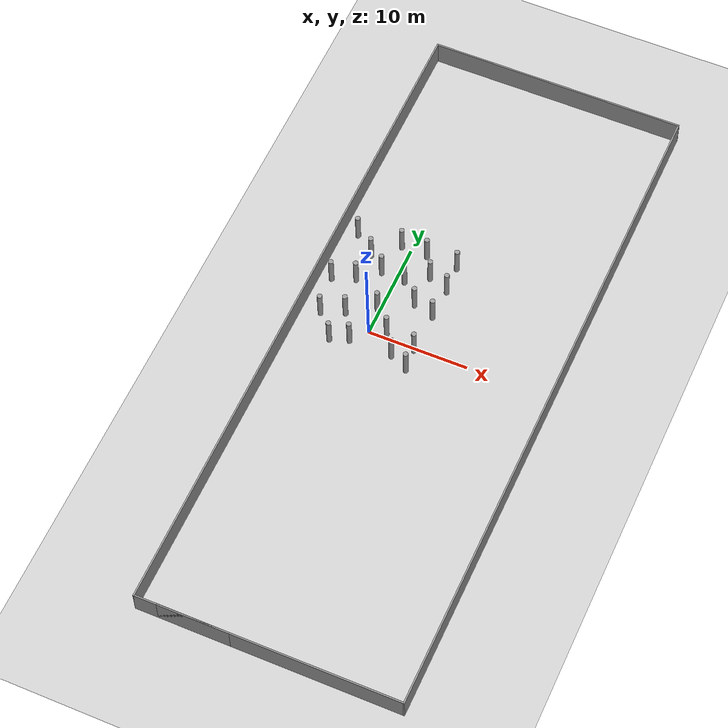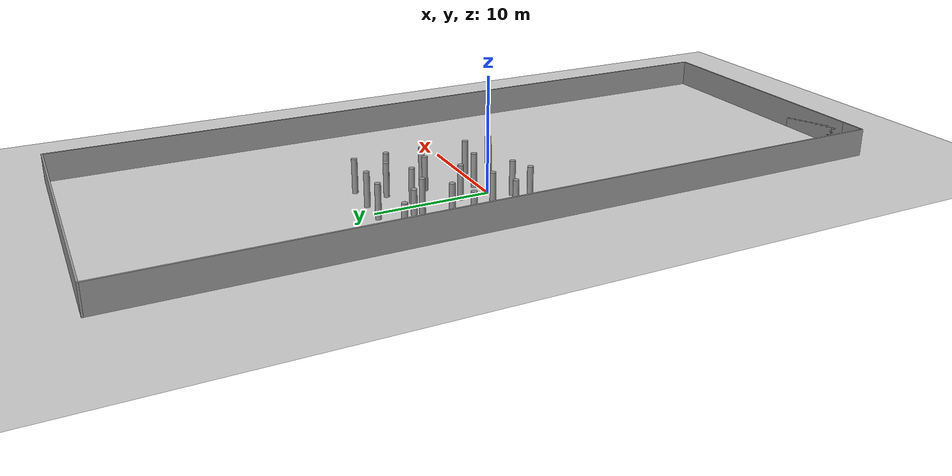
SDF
<sdf version="1.6">
 <world name="default">
  <model name="ground_plane">
   <static>1</static>
   <link name="link">
    <collision name="collision">
     <geometry><plane><normal>0 0 1</normal><size>100 100</size></plane></geometry>
     <surface><friction><ode><mu>100</mu><mu2>50</mu2></ode></friction></surface>
    </collision>
    <visual name="visual">
     <cast_shadows>0</cast_shadows>
     <geometry><plane><normal>0 0 1</normal><size>100 100</size></plane></geometry>
     <material>
      <script><uri>file://media/materials/scripts/gazebo.material</uri><name>Gazebo/Grey</name></script>
     </material>
    </visual>
   </link>
  </model>
  <model name="LjjForest">
   <link name="link_0">
    <inertial>
     <mass>1</mass>
     <inertia><ixx>0.145833</ixx><ixy>0</ixy><ixz>0</ixz><iyy>0.145833</iyy><iyz>0</iyz><izz>0.125</izz></inertia>
    </inertial>
    <pose>-5.02717 0.116957 0 0 -0 0</pose>
    <visual name="visual">
     <geometry><cylinder><radius>0.25</radius><length>3</length></cylinder></geometry>
     <material>
      <lighting>1</lighting>
      <script><uri>file://media/materials/scripts/gazebo.material</uri><name>Gazebo/Grey</name></script>
      <shader type="vertex"><normal_map>__default__</normal_map></shader>
      <ambient>0.3 0.3 0.3 1</ambient>
      <diffuse>0.7 0.7 0.7 1</diffuse>
      <specular>0.01 0.01 0.01 1</specular>
      <emissive>0 0 0 1</emissive>
     </material>
    </visual>
    <collision name="collision">
     <geometry><cylinder><radius>0.25</radius><length>3</length></cylinder></geometry>
     <surface>
      <friction>
       <ode><mu>1</mu><mu2>1</mu2><fdir1>0 0 0</fdir1><slip1>0</slip1><slip2>0</slip2></ode>
       <torsional>
        <coefficient>1</coefficient>
        <patch_radius>0</patch_radius>
        <surface_radius>0</surface_radius>
        <use_patch_radius>1</use_patch_radius>
        <ode><slip>0</slip></ode>
       </torsional>
      </friction>
      <bounce><restitution_coefficient>0</restitution_coefficient><threshold>1e+06</threshold></bounce>
      <contact>
       <collide_without_contact>0</collide_without_contact>
       <collide_without_contact_bitmask>1</collide_without_contact_bitmask>
       <collide_bitmask>1</collide_bitmask>
       <ode>
        <soft_cfm>0</soft_cfm>
        <soft_erp>0.2</soft_erp>
        <kp>1e+13</kp>
        <kd>1</kd>
        <max_vel>0.01</max_vel>
        <min_depth>0</min_depth>
       </ode>
       <bullet>
        <split_impulse>1</split_impulse>
        <split_impulse_penetration_threshold>-0.01</split_impulse_penetration_threshold>
        <soft_cfm>0</soft_cfm>
        <soft_erp>0.2</soft_erp>
        <kp>1e+13</kp>
        <kd>1</kd>
       </bullet>
      </contact>
     </surface>
    </collision>
   </link>
   <link name="link_0_clone">
    <inertial>
     <mass>1</mass>
     <inertia><ixx>0.145833</ixx><ixy>0</ixy><ixz>0</ixz><iyy>0.145833</iyy><iyz>0</iyz><izz>0.125</izz></inertia>
    </inertial>
    <pose>-2.83119 0.981911 0 0 -0 0</pose>
    <visual name="visual">
     <geometry><cylinder><radius>0.25</radius><length>3</length></cylinder></geometry>
     <material>
      <lighting>1</lighting>
      <script><uri>file://media/materials/scripts/gazebo.material</uri><name>Gazebo/Grey</name></script>
      <shader type="vertex"><normal_map>__default__</normal_map></shader>
      <ambient>0.3 0.3 0.3 1</ambient>
      <diffuse>0.7 0.7 0.7 1</diffuse>
      <specular>0.01 0.01 0.01 1</specular>
      <emissive>0 0 0 1</emissive>
     </material>
    </visual>
    <collision name="collision">
     <geometry><cylinder><radius>0.25</radius><length>3</length></cylinder></geometry>
     <surface>
      <friction>
       <ode><mu>1</mu><mu2>1</mu2><fdir1>0 0 0</fdir1><slip1>0</slip1><slip2>0</slip2></ode>
       <torsional>
        <coefficient>1</coefficient>
        <patch_radius>0</patch_radius>
        <surface_radius>0</surface_radius>
        <use_patch_radius>1</use_patch_radius>
        <ode><slip>0</slip></ode>
       </torsional>
      </friction>
      <bounce><restitution_coefficient>0</restitution_coefficient><threshold>1e+06</threshold></bounce>
      <contact>
       <collide_without_contact>0</collide_without_contact>
       <collide_without_contact_bitmask>1</collide_without_contact_bitmask>
       <collide_bitmask>1</collide_bitmask>
       <ode>
        <soft_cfm>0</soft_cfm>
        <soft_erp>0.2</soft_erp>
        <kp>1e+13</kp>
        <kd>1</kd>
        <max_vel>0.01</max_vel>
        <min_depth>0</min_depth>
       </ode>
       <bullet>
        <split_impulse>1</split_impulse>
        <split_impulse_penetration_threshold>-0.01</split_impulse_penetration_threshold>
        <soft_cfm>0</soft_cfm>
        <soft_erp>0.2</soft_erp>
        <kp>1e+13</kp>
        <kd>1</kd>
       </bullet>
      </contact>
     </surface>
    </collision>
   </link>
   <link name="link_0_clone_0">
    <inertial>
     <mass>1</mass>
     <inertia><ixx>0.145833</ixx><ixy>0</ixy><ixz>0</ixz><iyy>0.145833</iyy><iyz>0</iyz><izz>0.125</izz></inertia>
    </inertial>
    <pose>-0.25253 2.5682 0 0 -0 0</pose>
    <visual name="visual">
     <geometry><cylinder><radius>0.25</radius><length>3</length></cylinder></geometry>
     <material>
      <lighting>1</lighting>
      <script><uri>file://media/materials/scripts/gazebo.material</uri><name>Gazebo/Grey</name></script>
      <shader type="vertex"><normal_map>__default__</normal_map></shader>
      <ambient>0.3 0.3 0.3 1</ambient>
      <diffuse>0.7 0.7 0.7 1</diffuse>
      <specular>0.01 0.01 0.01 1</specular>
      <emissive>0 0 0 1</emissive>
     </material>
    </visual>
    <collision name="collision">
     <geometry><cylinder><radius>0.25</radius><length>3</length></cylinder></geometry>
     <surface>
      <friction>
       <ode><mu>1</mu><mu2>1</mu2><fdir1>0 0 0</fdir1><slip1>0</slip1><slip2>0</slip2></ode>
       <torsional>
        <coefficient>1</coefficient>
        <patch_radius>0</patch_radius>
        <surface_radius>0</surface_radius>
        <use_patch_radius>1</use_patch_radius>
        <ode><slip>0</slip></ode>
       </torsional>
      </friction>
      <bounce><restitution_coefficient>0</restitution_coefficient><threshold>1e+06</threshold></bounce>
      <contact>
       <collide_without_contact>0</collide_without_contact>
       <collide_without_contact_bitmask>1</collide_without_contact_bitmask>
       <collide_bitmask>1</collide_bitmask>
       <ode>
        <soft_cfm>0</soft_cfm>
        <soft_erp>0.2</soft_erp>
        <kp>1e+13</kp>
        <kd>1</kd>
        <max_vel>0.01</max_vel>
        <min_depth>0</min_depth>
       </ode>
       <bullet>
        <split_impulse>1</split_impulse>
        <split_impulse_penetration_threshold>-0.01</split_impulse_penetration_threshold>
        <soft_cfm>0</soft_cfm>
        <soft_erp>0.2</soft_erp>
        <kp>1e+13</kp>
        <kd>1</kd>
       </bullet>
      </contact>
     </surface>
    </collision>
   </link>
   <link name="link_0_clone_1">
    <inertial>
     <mass>1</mass>
     <inertia><ixx>0.145833</ixx><ixy>0</ixy><ixz>0</ixz><iyy>0.145833</iyy><iyz>0</iyz><izz>0.125</izz></inertia>
    </inertial>
    <pose>-1.2394 -1.64814 0 0 -0 0</pose>
    <visual name="visual">
     <geometry><cylinder><radius>0.25</radius><length>3</length></cylinder></geometry>
     <material>
      <lighting>1</lighting>
      <script><uri>file://media/materials/scripts/gazebo.material</uri><name>Gazebo/Grey</name></script>
      <shader type="vertex"><normal_map>__default__</normal_map></shader>
      <ambient>0.3 0.3 0.3 1</ambient>
      <diffuse>0.7 0.7 0.7 1</diffuse>
      <specular>0.01 0.01 0.01 1</specular>
      <emissive>0 0 0 1</emissive>
     </material>
    </visual>
    <collision name="collision">
     <geometry><cylinder><radius>0.25</radius><length>3</length></cylinder></geometry>
     <surface>
      <friction>
       <ode><mu>1</mu><mu2>1</mu2><fdir1>0 0 0</fdir1><slip1>0</slip1><slip2>0</slip2></ode>
       <torsional>
        <coefficient>1</coefficient>
        <patch_radius>0</patch_radius>
        <surface_radius>0</surface_radius>
        <use_patch_radius>1</use_patch_radius>
        <ode><slip>0</slip></ode>
       </torsional>
      </friction>
      <bounce><restitution_coefficient>0</restitution_coefficient><threshold>1e+06</threshold></bounce>
      <contact>
       <collide_without_contact>0</collide_without_contact>
       <collide_without_contact_bitmask>1</collide_without_contact_bitmask>
       <collide_bitmask>1</collide_bitmask>
       <ode>
        <soft_cfm>0</soft_cfm>
        <soft_erp>0.2</soft_erp>
        <kp>1e+13</kp>
        <kd>1</kd>
        <max_vel>0.01</max_vel>
        <min_depth>0</min_depth>
       </ode>
       <bullet>
        <split_impulse>1</split_impulse>
        <split_impulse_penetration_threshold>-0.01</split_impulse_penetration_threshold>
        <soft_cfm>0</soft_cfm>
        <soft_erp>0.2</soft_erp>
        <kp>1e+13</kp>
        <kd>1</kd>
       </bullet>
      </contact>
     </surface>
    </collision>
   </link>
   <link name="link_0_clone_15">
    <inertial>
     <mass>1</mass>
     <inertia><ixx>0.145833</ixx><ixy>0</ixy><ixz>0</ixz><iyy>0.145833</iyy><iyz>0</iyz><izz>0.125</izz></inertia>
    </inertial>
    <pose>-3.03254 -2.29236 0 0 -0 0</pose>
    <visual name="visual">
     <geometry><cylinder><radius>0.25</radius><length>3</length></cylinder></geometry>
     <material>
      <lighting>1</lighting>
      <script><uri>file://media/materials/scripts/gazebo.material</uri><name>Gazebo/Grey</name></script>
      <shader type="vertex"><normal_map>__default__</normal_map></shader>
      <ambient>0.3 0.3 0.3 1</ambient>
      <diffuse>0.7 0.7 0.7 1</diffuse>
      <specular>0.01 0.01 0.01 1</specular>
      <emissive>0 0 0 1</emissive>
     </material>
    </visual>
    <collision name="collision">
     <geometry><cylinder><radius>0.25</radius><length>3</length></cylinder></geometry>
     <surface>
      <friction>
       <ode><mu>1</mu><mu2>1</mu2><fdir1>0 0 0</fdir1><slip1>0</slip1><slip2>0</slip2></ode>
       <torsional>
        <coefficient>1</coefficient>
        <patch_radius>0</patch_radius>
        <surface_radius>0</surface_radius>
        <use_patch_radius>1</use_patch_radius>
        <ode><slip>0</slip></ode>
       </torsional>
      </friction>
      <bounce><restitution_coefficient>0</restitution_coefficient><threshold>1e+06</threshold></bounce>
      <contact>
       <collide_without_contact>0</collide_without_contact>
       <collide_without_contact_bitmask>1</collide_without_contact_bitmask>
       <collide_bitmask>1</collide_bitmask>
       <ode>
        <soft_cfm>0</soft_cfm>
        <soft_erp>0.2</soft_erp>
        <kp>1e+13</kp>
        <kd>1</kd>
        <max_vel>0.01</max_vel>
        <min_depth>0</min_depth>
       </ode>
       <bullet>
        <split_impulse>1</split_impulse>
        <split_impulse_penetration_threshold>-0.01</split_impulse_penetration_threshold>
        <soft_cfm>0</soft_cfm>
        <soft_erp>0.2</soft_erp>
        <kp>1e+13</kp>
        <kd>1</kd>
       </bullet>
      </contact>
     </surface>
    </collision>
   </link>
   <link name="link_0_clone_2">
    <inertial>
     <mass>1</mass>
     <inertia><ixx>0.145833</ixx><ixy>0</ixy><ixz>0</ixz><iyy>0.145833</iyy><iyz>0</iyz><izz>0.125</izz></inertia>
    </inertial>
    <pose>1.64727 0.418921 0 0 -0 0</pose>
    <visual name="visual">
     <geometry><cylinder><radius>0.25</radius><length>3</length></cylinder></geometry>
     <material>
      <lighting>1</lighting>
      <script><uri>file://media/materials/scripts/gazebo.material</uri><name>Gazebo/Grey</name></script>
      <shader type="vertex"><normal_map>__default__</normal_map></shader>
      <ambient>0.3 0.3 0.3 1</ambient>
      <diffuse>0.7 0.7 0.7 1</diffuse>
      <specular>0.01 0.01 0.01 1</specular>
      <emissive>0 0 0 1</emissive>
     </material>
    </visual>
    <collision name="collision">
     <geometry><cylinder><radius>0.25</radius><length>3</length></cylinder></geometry>
     <surface>
      <friction>
       <ode><mu>1</mu><mu2>1</mu2><fdir1>0 0 0</fdir1><slip1>0</slip1><slip2>0</slip2></ode>
       <torsional>
        <coefficient>1</coefficient>
        <patch_radius>0</patch_radius>
        <surface_radius>0</surface_radius>
        <use_patch_radius>1</use_patch_radius>
        <ode><slip>0</slip></ode>
       </torsional>
      </friction>
      <bounce><restitution_coefficient>0</restitution_coefficient><threshold>1e+06</threshold></bounce>
      <contact>
       <collide_without_contact>0</collide_without_contact>
       <collide_without_contact_bitmask>1</collide_without_contact_bitmask>
       <collide_bitmask>1</collide_bitmask>
       <ode>
        <soft_cfm>0</soft_cfm>
        <soft_erp>0.2</soft_erp>
        <kp>1e+13</kp>
        <kd>1</kd>
        <max_vel>0.01</max_vel>
        <min_depth>0</min_depth>
       </ode>
       <bullet>
        <split_impulse>1</split_impulse>
        <split_impulse_penetration_threshold>-0.01</split_impulse_penetration_threshold>
        <soft_cfm>0</soft_cfm>
        <soft_erp>0.2</soft_erp>
        <kp>1e+13</kp>
        <kd>1</kd>
       </bullet>
      </contact>
     </surface>
    </collision>
   </link>
   <link name="link_0_clone_23">
    <inertial>
     <mass>1</mass>
     <inertia><ixx>0.145833</ixx><ixy>0</ixy><ixz>0</ixz><iyy>0.145833</iyy><iyz>0</iyz><izz>0.125</izz></inertia>
    </inertial>
    <pose>-5.66615 4.05911 0 0 -0 0</pose>
    <visual name="visual">
     <geometry><cylinder><radius>0.25</radius><length>3</length></cylinder></geometry>
     <material>
      <lighting>1</lighting>
      <script><uri>file://media/materials/scripts/gazebo.material</uri><name>Gazebo/Grey</name></script>
      <shader type="vertex"><normal_map>__default__</normal_map></shader>
      <ambient>0.3 0.3 0.3 1</ambient>
      <diffuse>0.7 0.7 0.7 1</diffuse>
      <specular>0.01 0.01 0.01 1</specular>
      <emissive>0 0 0 1</emissive>
     </material>
    </visual>
    <collision name="collision">
     <geometry><cylinder><radius>0.25</radius><length>3</length></cylinder></geometry>
     <surface>
      <friction>
       <ode><mu>1</mu><mu2>1</mu2><fdir1>0 0 0</fdir1><slip1>0</slip1><slip2>0</slip2></ode>
       <torsional>
        <coefficient>1</coefficient>
        <patch_radius>0</patch_radius>
        <surface_radius>0</surface_radius>
        <use_patch_radius>1</use_patch_radius>
        <ode><slip>0</slip></ode>
       </torsional>
      </friction>
      <bounce><restitution_coefficient>0</restitution_coefficient><threshold>1e+06</threshold></bounce>
      <contact>
       <collide_without_contact>0</collide_without_contact>
       <collide_without_contact_bitmask>1</collide_without_contact_bitmask>
       <collide_bitmask>1</collide_bitmask>
       <ode>
        <soft_cfm>0</soft_cfm>
        <soft_erp>0.2</soft_erp>
        <kp>1e+13</kp>
        <kd>1</kd>
        <max_vel>0.01</max_vel>
        <min_depth>0</min_depth>
       </ode>
       <bullet>
        <split_impulse>1</split_impulse>
        <split_impulse_penetration_threshold>-0.01</split_impulse_penetration_threshold>
        <soft_cfm>0</soft_cfm>
        <soft_erp>0.2</soft_erp>
        <kp>1e+13</kp>
        <kd>1</kd>
       </bullet>
      </contact>
     </surface>
    </collision>
   </link>
   <link name="link_0_clone_24">
    <inertial>
     <mass>1</mass>
     <inertia><ixx>0.145833</ixx><ixy>0</ixy><ixz>0</ixz><iyy>0.145833</iyy><iyz>0</iyz><izz>0.125</izz></inertia>
    </inertial>
    <pose>2.92874 7.75131 0 0 -0 0</pose>
    <visual name="visual">
     <geometry><cylinder><radius>0.25</radius><length>3</length></cylinder></geometry>
     <material>
      <lighting>1</lighting>
      <script><uri>file://media/materials/scripts/gazebo.material</uri><name>Gazebo/Grey</name></script>
      <shader type="vertex"><normal_map>__default__</normal_map></shader>
      <ambient>0.3 0.3 0.3 1</ambient>
      <diffuse>0.7 0.7 0.7 1</diffuse>
      <specular>0.01 0.01 0.01 1</specular>
      <emissive>0 0 0 1</emissive>
     </material>
    </visual>
    <collision name="collision">
     <geometry><cylinder><radius>0.25</radius><length>3</length></cylinder></geometry>
     <surface>
      <friction>
       <ode><mu>1</mu><mu2>1</mu2><fdir1>0 0 0</fdir1><slip1>0</slip1><slip2>0</slip2></ode>
       <torsional>
        <coefficient>1</coefficient>
        <patch_radius>0</patch_radius>
        <surface_radius>0</surface_radius>
        <use_patch_radius>1</use_patch_radius>
        <ode><slip>0</slip></ode>
       </torsional>
      </friction>
      <bounce><restitution_coefficient>0</restitution_coefficient><threshold>1e+06</threshold></bounce>
      <contact>
       <collide_without_contact>0</collide_without_contact>
       <collide_without_contact_bitmask>1</collide_without_contact_bitmask>
       <collide_bitmask>1</collide_bitmask>
       <ode>
        <soft_cfm>0</soft_cfm>
        <soft_erp>0.2</soft_erp>
        <kp>1e+13</kp>
        <kd>1</kd>
        <max_vel>0.01</max_vel>
        <min_depth>0</min_depth>
       </ode>
       <bullet>
        <split_impulse>1</split_impulse>
        <split_impulse_penetration_threshold>-0.01</split_impulse_penetration_threshold>
        <soft_cfm>0</soft_cfm>
        <soft_erp>0.2</soft_erp>
        <kp>1e+13</kp>
        <kd>1</kd>
       </bullet>
      </contact>
     </surface>
    </collision>
   </link>
   <link name="link_0_clone_25">
    <inertial>
     <mass>1</mass>
     <inertia><ixx>0.145833</ixx><ixy>0</ixy><ixz>0</ixz><iyy>0.145833</iyy><iyz>0</iyz><izz>0.125</izz></inertia>
    </inertial>
    <pose>4.82479 9.76951 0 0 -0 0</pose>
    <visual name="visual">
     <geometry><cylinder><radius>0.25</radius><length>3</length></cylinder></geometry>
     <material>
      <lighting>1</lighting>
      <script><uri>file://media/materials/scripts/gazebo.material</uri><name>Gazebo/Grey</name></script>
      <shader type="vertex"><normal_map>__default__</normal_map></shader>
      <ambient>0.3 0.3 0.3 1</ambient>
      <diffuse>0.7 0.7 0.7 1</diffuse>
      <specular>0.01 0.01 0.01 1</specular>
      <emissive>0 0 0 1</emissive>
     </material>
    </visual>
    <collision name="collision">
     <geometry><cylinder><radius>0.25</radius><length>3</length></cylinder></geometry>
     <surface>
      <friction>
       <ode><mu>1</mu><mu2>1</mu2><fdir1>0 0 0</fdir1><slip1>0</slip1><slip2>0</slip2></ode>
       <torsional>
        <coefficient>1</coefficient>
        <patch_radius>0</patch_radius>
        <surface_radius>0</surface_radius>
        <use_patch_radius>1</use_patch_radius>
        <ode><slip>0</slip></ode>
       </torsional>
      </friction>
      <bounce><restitution_coefficient>0</restitution_coefficient><threshold>1e+06</threshold></bounce>
      <contact>
       <collide_without_contact>0</collide_without_contact>
       <collide_without_contact_bitmask>1</collide_without_contact_bitmask>
       <collide_bitmask>1</collide_bitmask>
       <ode>
        <soft_cfm>0</soft_cfm>
        <soft_erp>0.2</soft_erp>
        <kp>1e+13</kp>
        <kd>1</kd>
        <max_vel>0.01</max_vel>
        <min_depth>0</min_depth>
       </ode>
       <bullet>
        <split_impulse>1</split_impulse>
        <split_impulse_penetration_threshold>-0.01</split_impulse_penetration_threshold>
        <soft_cfm>0</soft_cfm>
        <soft_erp>0.2</soft_erp>
        <kp>1e+13</kp>
        <kd>1</kd>
       </bullet>
      </contact>
     </surface>
    </collision>
   </link>
   <link name="link_0_clone_26">
    <inertial>
     <mass>1</mass>
     <inertia><ixx>0.145833</ixx><ixy>0</ixy><ixz>0</ixz><iyy>0.145833</iyy><iyz>0</iyz><izz>0.125</izz></inertia>
    </inertial>
    <pose>1.66794 9.91533 0 0 -0 0</pose>
    <visual name="visual">
     <geometry><cylinder><radius>0.25</radius><length>3</length></cylinder></geometry>
     <material>
      <lighting>1</lighting>
      <script><uri>file://media/materials/scripts/gazebo.material</uri><name>Gazebo/Grey</name></script>
      <shader type="vertex"><normal_map>__default__</normal_map></shader>
      <ambient>0.3 0.3 0.3 1</ambient>
      <diffuse>0.7 0.7 0.7 1</diffuse>
      <specular>0.01 0.01 0.01 1</specular>
      <emissive>0 0 0 1</emissive>
     </material>
    </visual>
    <collision name="collision">
     <geometry><cylinder><radius>0.25</radius><length>3</length></cylinder></geometry>
     <surface>
      <friction>
       <ode><mu>1</mu><mu2>1</mu2><fdir1>0 0 0</fdir1><slip1>0</slip1><slip2>0</slip2></ode>
       <torsional>
        <coefficient>1</coefficient>
        <patch_radius>0</patch_radius>
        <surface_radius>0</surface_radius>
        <use_patch_radius>1</use_patch_radius>
        <ode><slip>0</slip></ode>
       </torsional>
      </friction>
      <bounce><restitution_coefficient>0</restitution_coefficient><threshold>1e+06</threshold></bounce>
      <contact>
       <collide_without_contact>0</collide_without_contact>
       <collide_without_contact_bitmask>1</collide_without_contact_bitmask>
       <collide_bitmask>1</collide_bitmask>
       <ode>
        <soft_cfm>0</soft_cfm>
        <soft_erp>0.2</soft_erp>
        <kp>1e+13</kp>
        <kd>1</kd>
        <max_vel>0.01</max_vel>
        <min_depth>0</min_depth>
       </ode>
       <bullet>
        <split_impulse>1</split_impulse>
        <split_impulse_penetration_threshold>-0.01</split_impulse_penetration_threshold>
        <soft_cfm>0</soft_cfm>
        <soft_erp>0.2</soft_erp>
        <kp>1e+13</kp>
        <kd>1</kd>
       </bullet>
      </contact>
     </surface>
    </collision>
   </link>
   <link name="link_0_clone_27">
    <inertial>
     <mass>1</mass>
     <inertia><ixx>0.145833</ixx><ixy>0</ixy><ixz>0</ixz><iyy>0.145833</iyy><iyz>0</iyz><izz>0.125</izz></inertia>
    </inertial>
    <pose>-0.975859 10.0087 0 0 -0 0</pose>
    <visual name="visual">
     <geometry><cylinder><radius>0.25</radius><length>3</length></cylinder></geometry>
     <material>
      <lighting>1</lighting>
      <script><uri>file://media/materials/scripts/gazebo.material</uri><name>Gazebo/Grey</name></script>
      <shader type="vertex"><normal_map>__default__</normal_map></shader>
      <ambient>0.3 0.3 0.3 1</ambient>
      <diffuse>0.7 0.7 0.7 1</diffuse>
      <specular>0.01 0.01 0.01 1</specular>
      <emissive>0 0 0 1</emissive>
     </material>
    </visual>
    <collision name="collision">
     <geometry><cylinder><radius>0.25</radius><length>3</length></cylinder></geometry>
     <surface>
      <friction>
       <ode><mu>1</mu><mu2>1</mu2><fdir1>0 0 0</fdir1><slip1>0</slip1><slip2>0</slip2></ode>
       <torsional>
        <coefficient>1</coefficient>
        <patch_radius>0</patch_radius>
        <surface_radius>0</surface_radius>
        <use_patch_radius>1</use_patch_radius>
        <ode><slip>0</slip></ode>
       </torsional>
      </friction>
      <bounce><restitution_coefficient>0</restitution_coefficient><threshold>1e+06</threshold></bounce>
      <contact>
       <collide_without_contact>0</collide_without_contact>
       <collide_without_contact_bitmask>1</collide_without_contact_bitmask>
       <collide_bitmask>1</collide_bitmask>
       <ode>
        <soft_cfm>0</soft_cfm>
        <soft_erp>0.2</soft_erp>
        <kp>1e+13</kp>
        <kd>1</kd>
        <max_vel>0.01</max_vel>
        <min_depth>0</min_depth>
       </ode>
       <bullet>
        <split_impulse>1</split_impulse>
        <split_impulse_penetration_threshold>-0.01</split_impulse_penetration_threshold>
        <soft_cfm>0</soft_cfm>
        <soft_erp>0.2</soft_erp>
        <kp>1e+13</kp>
        <kd>1</kd>
       </bullet>
      </contact>
     </surface>
    </collision>
   </link>
   <link name="link_0_clone_28">
    <inertial>
     <mass>1</mass>
     <inertia><ixx>0.145833</ixx><ixy>0</ixy><ixz>0</ixz><iyy>0.145833</iyy><iyz>0</iyz><izz>0.125</izz></inertia>
    </inertial>
    <pose>-3.28832 7.97521 0 0 -0 0</pose>
    <visual name="visual">
     <geometry><cylinder><radius>0.25</radius><length>3</length></cylinder></geometry>
     <material>
      <lighting>1</lighting>
      <script><uri>file://media/materials/scripts/gazebo.material</uri><name>Gazebo/Grey</name></script>
      <shader type="vertex"><normal_map>__default__</normal_map></shader>
      <ambient>0.3 0.3 0.3 1</ambient>
      <diffuse>0.7 0.7 0.7 1</diffuse>
      <specular>0.01 0.01 0.01 1</specular>
      <emissive>0 0 0 1</emissive>
     </material>
    </visual>
    <collision name="collision">
     <geometry><cylinder><radius>0.25</radius><length>3</length></cylinder></geometry>
     <surface>
      <friction>
       <ode><mu>1</mu><mu2>1</mu2><fdir1>0 0 0</fdir1><slip1>0</slip1><slip2>0</slip2></ode>
       <torsional>
        <coefficient>1</coefficient>
        <patch_radius>0</patch_radius>
        <surface_radius>0</surface_radius>
        <use_patch_radius>1</use_patch_radius>
        <ode><slip>0</slip></ode>
       </torsional>
      </friction>
      <bounce><restitution_coefficient>0</restitution_coefficient><threshold>1e+06</threshold></bounce>
      <contact>
       <collide_without_contact>0</collide_without_contact>
       <collide_without_contact_bitmask>1</collide_without_contact_bitmask>
       <collide_bitmask>1</collide_bitmask>
       <ode>
        <soft_cfm>0</soft_cfm>
        <soft_erp>0.2</soft_erp>
        <kp>1e+13</kp>
        <kd>1</kd>
        <max_vel>0.01</max_vel>
        <min_depth>0</min_depth>
       </ode>
       <bullet>
        <split_impulse>1</split_impulse>
        <split_impulse_penetration_threshold>-0.01</split_impulse_penetration_threshold>
        <soft_cfm>0</soft_cfm>
        <soft_erp>0.2</soft_erp>
        <kp>1e+13</kp>
        <kd>1</kd>
       </bullet>
      </contact>
     </surface>
    </collision>
   </link>
   <link name="link_0_clone_29">
    <inertial>
     <mass>1</mass>
     <inertia><ixx>0.145833</ixx><ixy>0</ixy><ixz>0</ixz><iyy>0.145833</iyy><iyz>0</iyz><izz>0.125</izz></inertia>
    </inertial>
    <pose>-5.38645 9.63545 0 0 -0 0</pose>
    <visual name="visual">
     <geometry><cylinder><radius>0.25</radius><length>3</length></cylinder></geometry>
     <material>
      <lighting>1</lighting>
      <script><uri>file://media/materials/scripts/gazebo.material</uri><name>Gazebo/Grey</name></script>
      <shader type="vertex"><normal_map>__default__</normal_map></shader>
      <ambient>0.3 0.3 0.3 1</ambient>
      <diffuse>0.7 0.7 0.7 1</diffuse>
      <specular>0.01 0.01 0.01 1</specular>
      <emissive>0 0 0 1</emissive>
     </material>
    </visual>
    <collision name="collision">
     <geometry><cylinder><radius>0.25</radius><length>3</length></cylinder></geometry>
     <surface>
      <friction>
       <ode><mu>1</mu><mu2>1</mu2><fdir1>0 0 0</fdir1><slip1>0</slip1><slip2>0</slip2></ode>
       <torsional>
        <coefficient>1</coefficient>
        <patch_radius>0</patch_radius>
        <surface_radius>0</surface_radius>
        <use_patch_radius>1</use_patch_radius>
        <ode><slip>0</slip></ode>
       </torsional>
      </friction>
      <bounce><restitution_coefficient>0</restitution_coefficient><threshold>1e+06</threshold></bounce>
      <contact>
       <collide_without_contact>0</collide_without_contact>
       <collide_without_contact_bitmask>1</collide_without_contact_bitmask>
       <collide_bitmask>1</collide_bitmask>
       <ode>
        <soft_cfm>0</soft_cfm>
        <soft_erp>0.2</soft_erp>
        <kp>1e+13</kp>
        <kd>1</kd>
        <max_vel>0.01</max_vel>
        <min_depth>0</min_depth>
       </ode>
       <bullet>
        <split_impulse>1</split_impulse>
        <split_impulse_penetration_threshold>-0.01</split_impulse_penetration_threshold>
        <soft_cfm>0</soft_cfm>
        <soft_erp>0.2</soft_erp>
        <kp>1e+13</kp>
        <kd>1</kd>
       </bullet>
      </contact>
     </surface>
    </collision>
   </link>
   <link name="link_0_clone_3">
    <inertial>
     <mass>1</mass>
     <inertia><ixx>0.145833</ixx><ixy>0</ixy><ixz>0</ixz><iyy>0.145833</iyy><iyz>0</iyz><izz>0.125</izz></inertia>
    </inertial>
    <pose>2.76214 4.38882 0 0 -0 0</pose>
    <visual name="visual">
     <geometry><cylinder><radius>0.25</radius><length>3</length></cylinder></geometry>
     <material>
      <lighting>1</lighting>
      <script><uri>file://media/materials/scripts/gazebo.material</uri><name>Gazebo/Grey</name></script>
      <shader type="vertex"><normal_map>__default__</normal_map></shader>
      <ambient>0.3 0.3 0.3 1</ambient>
      <diffuse>0.7 0.7 0.7 1</diffuse>
      <specular>0.01 0.01 0.01 1</specular>
      <emissive>0 0 0 1</emissive>
     </material>
    </visual>
    <collision name="collision">
     <geometry><cylinder><radius>0.25</radius><length>3</length></cylinder></geometry>
     <surface>
      <friction>
       <ode><mu>1</mu><mu2>1</mu2><fdir1>0 0 0</fdir1><slip1>0</slip1><slip2>0</slip2></ode>
       <torsional>
        <coefficient>1</coefficient>
        <patch_radius>0</patch_radius>
        <surface_radius>0</surface_radius>
        <use_patch_radius>1</use_patch_radius>
        <ode><slip>0</slip></ode>
       </torsional>
      </friction>
      <bounce><restitution_coefficient>0</restitution_coefficient><threshold>1e+06</threshold></bounce>
      <contact>
       <collide_without_contact>0</collide_without_contact>
       <collide_without_contact_bitmask>1</collide_without_contact_bitmask>
       <collide_bitmask>1</collide_bitmask>
       <ode>
        <soft_cfm>0</soft_cfm>
        <soft_erp>0.2</soft_erp>
        <kp>1e+13</kp>
        <kd>1</kd>
        <max_vel>0.01</max_vel>
        <min_depth>0</min_depth>
       </ode>
       <bullet>
        <split_impulse>1</split_impulse>
        <split_impulse_penetration_threshold>-0.01</split_impulse_penetration_threshold>
        <soft_cfm>0</soft_cfm>
        <soft_erp>0.2</soft_erp>
        <kp>1e+13</kp>
        <kd>1</kd>
       </bullet>
      </contact>
     </surface>
    </collision>
   </link>
   <link name="link_0_clone_30">
    <inertial>
     <mass>1</mass>
     <inertia><ixx>0.145833</ixx><ixy>0</ixy><ixz>0</ixz><iyy>0.145833</iyy><iyz>0</iyz><izz>0.125</izz></inertia>
    </inertial>
    <pose>4.96935 6.93626 0 0 -0 0</pose>
    <visual name="visual">
     <geometry><cylinder><radius>0.25</radius><length>3</length></cylinder></geometry>
     <material>
      <lighting>1</lighting>
      <script><uri>file://media/materials/scripts/gazebo.material</uri><name>Gazebo/Grey</name></script>
      <shader type="vertex"><normal_map>__default__</normal_map></shader>
      <ambient>0.3 0.3 0.3 1</ambient>
      <diffuse>0.7 0.7 0.7 1</diffuse>
      <specular>0.01 0.01 0.01 1</specular>
      <emissive>0 0 0 1</emissive>
     </material>
    </visual>
    <collision name="collision">
     <geometry><cylinder><radius>0.25</radius><length>3</length></cylinder></geometry>
     <surface>
      <friction>
       <ode><mu>1</mu><mu2>1</mu2><fdir1>0 0 0</fdir1><slip1>0</slip1><slip2>0</slip2></ode>
       <torsional>
        <coefficient>1</coefficient>
        <patch_radius>0</patch_radius>
        <surface_radius>0</surface_radius>
        <use_patch_radius>1</use_patch_radius>
        <ode><slip>0</slip></ode>
       </torsional>
      </friction>
      <bounce><restitution_coefficient>0</restitution_coefficient><threshold>1e+06</threshold></bounce>
      <contact>
       <collide_without_contact>0</collide_without_contact>
       <collide_without_contact_bitmask>1</collide_without_contact_bitmask>
       <collide_bitmask>1</collide_bitmask>
       <ode>
        <soft_cfm>0</soft_cfm>
        <soft_erp>0.2</soft_erp>
        <kp>1e+13</kp>
        <kd>1</kd>
        <max_vel>0.01</max_vel>
        <min_depth>0</min_depth>
       </ode>
       <bullet>
        <split_impulse>1</split_impulse>
        <split_impulse_penetration_threshold>-0.01</split_impulse_penetration_threshold>
        <soft_cfm>0</soft_cfm>
        <soft_erp>0.2</soft_erp>
        <kp>1e+13</kp>
        <kd>1</kd>
       </bullet>
      </contact>
     </surface>
    </collision>
   </link>
   <link name="link_0_clone_31">
    <inertial>
     <mass>1</mass>
     <inertia><ixx>0.145833</ixx><ixy>0</ixy><ixz>0</ixz><iyy>0.145833</iyy><iyz>0</iyz><izz>0.125</izz></inertia>
    </inertial>
    <pose>4.87388 3.77106 0 0 -0 0</pose>
    <visual name="visual">
     <geometry><cylinder><radius>0.25</radius><length>3</length></cylinder></geometry>
     <material>
      <lighting>1</lighting>
      <script><uri>file://media/materials/scripts/gazebo.material</uri><name>Gazebo/Grey</name></script>
      <shader type="vertex"><normal_map>__default__</normal_map></shader>
      <ambient>0.3 0.3 0.3 1</ambient>
      <diffuse>0.7 0.7 0.7 1</diffuse>
      <specular>0.01 0.01 0.01 1</specular>
      <emissive>0 0 0 1</emissive>
     </material>
    </visual>
    <collision name="collision">
     <geometry><cylinder><radius>0.25</radius><length>3</length></cylinder></geometry>
     <surface>
      <friction>
       <ode><mu>1</mu><mu2>1</mu2><fdir1>0 0 0</fdir1><slip1>0</slip1><slip2>0</slip2></ode>
       <torsional>
        <coefficient>1</coefficient>
        <patch_radius>0</patch_radius>
        <surface_radius>0</surface_radius>
        <use_patch_radius>1</use_patch_radius>
        <ode><slip>0</slip></ode>
       </torsional>
      </friction>
      <bounce><restitution_coefficient>0</restitution_coefficient><threshold>1e+06</threshold></bounce>
      <contact>
       <collide_without_contact>0</collide_without_contact>
       <collide_without_contact_bitmask>1</collide_without_contact_bitmask>
       <collide_bitmask>1</collide_bitmask>
       <ode>
        <soft_cfm>0</soft_cfm>
        <soft_erp>0.2</soft_erp>
        <kp>1e+13</kp>
        <kd>1</kd>
        <max_vel>0.01</max_vel>
        <min_depth>0</min_depth>
       </ode>
       <bullet>
        <split_impulse>1</split_impulse>
        <split_impulse_penetration_threshold>-0.01</split_impulse_penetration_threshold>
        <soft_cfm>0</soft_cfm>
        <soft_erp>0.2</soft_erp>
        <kp>1e+13</kp>
        <kd>1</kd>
       </bullet>
      </contact>
     </surface>
    </collision>
   </link>
   <link name="link_0_clone_32">
    <inertial>
     <mass>1</mass>
     <inertia><ixx>0.145833</ixx><ixy>0</ixy><ixz>0</ixz><iyy>0.145833</iyy><iyz>0</iyz><izz>0.125</izz></inertia>
    </inertial>
    <pose>3.04344 -1.68403 0 0 -0 0</pose>
    <visual name="visual">
     <geometry><cylinder><radius>0.25</radius><length>3</length></cylinder></geometry>
     <material>
      <lighting>1</lighting>
      <script><uri>file://media/materials/scripts/gazebo.material</uri><name>Gazebo/Grey</name></script>
      <shader type="vertex"><normal_map>__default__</normal_map></shader>
      <ambient>0.3 0.3 0.3 1</ambient>
      <diffuse>0.7 0.7 0.7 1</diffuse>
      <specular>0.01 0.01 0.01 1</specular>
      <emissive>0 0 0 1</emissive>
     </material>
    </visual>
    <collision name="collision">
     <geometry><cylinder><radius>0.25</radius><length>3</length></cylinder></geometry>
     <surface>
      <friction>
       <ode><mu>1</mu><mu2>1</mu2><fdir1>0 0 0</fdir1><slip1>0</slip1><slip2>0</slip2></ode>
       <torsional>
        <coefficient>1</coefficient>
        <patch_radius>0</patch_radius>
        <surface_radius>0</surface_radius>
        <use_patch_radius>1</use_patch_radius>
        <ode><slip>0</slip></ode>
       </torsional>
      </friction>
      <bounce><restitution_coefficient>0</restitution_coefficient><threshold>1e+06</threshold></bounce>
      <contact>
       <collide_without_contact>0</collide_without_contact>
       <collide_without_contact_bitmask>1</collide_without_contact_bitmask>
       <collide_bitmask>1</collide_bitmask>
       <ode>
        <soft_cfm>0</soft_cfm>
        <soft_erp>0.2</soft_erp>
        <kp>1e+13</kp>
        <kd>1</kd>
        <max_vel>0.01</max_vel>
        <min_depth>0</min_depth>
       </ode>
       <bullet>
        <split_impulse>1</split_impulse>
        <split_impulse_penetration_threshold>-0.01</split_impulse_penetration_threshold>
        <soft_cfm>0</soft_cfm>
        <soft_erp>0.2</soft_erp>
        <kp>1e+13</kp>
        <kd>1</kd>
       </bullet>
      </contact>
     </surface>
    </collision>
   </link>
   <link name="link_0_clone_4">
    <inertial>
     <mass>1</mass>
     <inertia><ixx>0.145833</ixx><ixy>0</ixy><ixz>0</ixz><iyy>0.145833</iyy><iyz>0</iyz><izz>0.125</izz></inertia>
    </inertial>
    <pose>0.858928 6.3824 0 0 -0 0</pose>
    <visual name="visual">
     <geometry><cylinder><radius>0.25</radius><length>3</length></cylinder></geometry>
     <material>
      <lighting>1</lighting>
      <script><uri>file://media/materials/scripts/gazebo.material</uri><name>Gazebo/Grey</name></script>
      <shader type="vertex"><normal_map>__default__</normal_map></shader>
      <ambient>0.3 0.3 0.3 1</ambient>
      <diffuse>0.7 0.7 0.7 1</diffuse>
      <specular>0.01 0.01 0.01 1</specular>
      <emissive>0 0 0 1</emissive>
     </material>
    </visual>
    <collision name="collision">
     <geometry><cylinder><radius>0.25</radius><length>3</length></cylinder></geometry>
     <surface>
      <friction>
       <ode><mu>1</mu><mu2>1</mu2><fdir1>0 0 0</fdir1><slip1>0</slip1><slip2>0</slip2></ode>
       <torsional>
        <coefficient>1</coefficient>
        <patch_radius>0</patch_radius>
        <surface_radius>0</surface_radius>
        <use_patch_radius>1</use_patch_radius>
        <ode><slip>0</slip></ode>
       </torsional>
      </friction>
      <bounce><restitution_coefficient>0</restitution_coefficient><threshold>1e+06</threshold></bounce>
      <contact>
       <collide_without_contact>0</collide_without_contact>
       <collide_without_contact_bitmask>1</collide_without_contact_bitmask>
       <collide_bitmask>1</collide_bitmask>
       <ode>
        <soft_cfm>0</soft_cfm>
        <soft_erp>0.2</soft_erp>
        <kp>1e+13</kp>
        <kd>1</kd>
        <max_vel>0.01</max_vel>
        <min_depth>0</min_depth>
       </ode>
       <bullet>
        <split_impulse>1</split_impulse>
        <split_impulse_penetration_threshold>-0.01</split_impulse_penetration_threshold>
        <soft_cfm>0</soft_cfm>
        <soft_erp>0.2</soft_erp>
        <kp>1e+13</kp>
        <kd>1</kd>
       </bullet>
      </contact>
     </surface>
    </collision>
   </link>
   <link name="link_0_clone_5">
    <inertial>
     <mass>1</mass>
     <inertia><ixx>0.145833</ixx><ixy>0</ixy><ixz>0</ixz><iyy>0.145833</iyy><iyz>0</iyz><izz>0.125</izz></inertia>
    </inertial>
    <pose>-1.56065 6.53618 0 0 -0 0</pose>
    <visual name="visual">
     <geometry><cylinder><radius>0.25</radius><length>3</length></cylinder></geometry>
     <material>
      <lighting>1</lighting>
      <script><uri>file://media/materials/scripts/gazebo.material</uri><name>Gazebo/Grey</name></script>
      <shader type="vertex"><normal_map>__default__</normal_map></shader>
      <ambient>0.3 0.3 0.3 1</ambient>
      <diffuse>0.7 0.7 0.7 1</diffuse>
      <specular>0.01 0.01 0.01 1</specular>
      <emissive>0 0 0 1</emissive>
     </material>
    </visual>
    <collision name="collision">
     <geometry><cylinder><radius>0.25</radius><length>3</length></cylinder></geometry>
     <surface>
      <friction>
       <ode><mu>1</mu><mu2>1</mu2><fdir1>0 0 0</fdir1><slip1>0</slip1><slip2>0</slip2></ode>
       <torsional>
        <coefficient>1</coefficient>
        <patch_radius>0</patch_radius>
        <surface_radius>0</surface_radius>
        <use_patch_radius>1</use_patch_radius>
        <ode><slip>0</slip></ode>
       </torsional>
      </friction>
      <bounce><restitution_coefficient>0</restitution_coefficient><threshold>1e+06</threshold></bounce>
      <contact>
       <collide_without_contact>0</collide_without_contact>
       <collide_without_contact_bitmask>1</collide_without_contact_bitmask>
       <collide_bitmask>1</collide_bitmask>
       <ode>
        <soft_cfm>0</soft_cfm>
        <soft_erp>0.2</soft_erp>
        <kp>1e+13</kp>
        <kd>1</kd>
        <max_vel>0.01</max_vel>
        <min_depth>0</min_depth>
       </ode>
       <bullet>
        <split_impulse>1</split_impulse>
        <split_impulse_penetration_threshold>-0.01</split_impulse_penetration_threshold>
        <soft_cfm>0</soft_cfm>
        <soft_erp>0.2</soft_erp>
        <kp>1e+13</kp>
        <kd>1</kd>
       </bullet>
      </contact>
     </surface>
    </collision>
   </link>
   <link name="link_0_clone_6">
    <inertial>
     <mass>1</mass>
     <inertia><ixx>0.145833</ixx><ixy>0</ixy><ixz>0</ixz><iyy>0.145833</iyy><iyz>0</iyz><izz>0.125</izz></inertia>
    </inertial>
    <pose>-3.46215 4.85006 0 0 -0 0</pose>
    <visual name="visual">
     <geometry><cylinder><radius>0.25</radius><length>3</length></cylinder></geometry>
     <material>
      <lighting>1</lighting>
      <script><uri>file://media/materials/scripts/gazebo.material</uri><name>Gazebo/Grey</name></script>
      <shader type="vertex"><normal_map>__default__</normal_map></shader>
      <ambient>0.3 0.3 0.3 1</ambient>
      <diffuse>0.7 0.7 0.7 1</diffuse>
      <specular>0.01 0.01 0.01 1</specular>
      <emissive>0 0 0 1</emissive>
     </material>
    </visual>
    <collision name="collision">
     <geometry><cylinder><radius>0.25</radius><length>3</length></cylinder></geometry>
     <surface>
      <friction>
       <ode><mu>1</mu><mu2>1</mu2><fdir1>0 0 0</fdir1><slip1>0</slip1><slip2>0</slip2></ode>
       <torsional>
        <coefficient>1</coefficient>
        <patch_radius>0</patch_radius>
        <surface_radius>0</surface_radius>
        <use_patch_radius>1</use_patch_radius>
        <ode><slip>0</slip></ode>
       </torsional>
      </friction>
      <bounce><restitution_coefficient>0</restitution_coefficient><threshold>1e+06</threshold></bounce>
      <contact>
       <collide_without_contact>0</collide_without_contact>
       <collide_without_contact_bitmask>1</collide_without_contact_bitmask>
       <collide_bitmask>1</collide_bitmask>
       <ode>
        <soft_cfm>0</soft_cfm>
        <soft_erp>0.2</soft_erp>
        <kp>1e+13</kp>
        <kd>1</kd>
        <max_vel>0.01</max_vel>
        <min_depth>0</min_depth>
       </ode>
       <bullet>
        <split_impulse>1</split_impulse>
        <split_impulse_penetration_threshold>-0.01</split_impulse_penetration_threshold>
        <soft_cfm>0</soft_cfm>
        <soft_erp>0.2</soft_erp>
        <kp>1e+13</kp>
        <kd>1</kd>
       </bullet>
      </contact>
     </surface>
    </collision>
   </link>
   <link name="link_0_clone_8">
    <inertial>
     <mass>1</mass>
     <inertia><ixx>0.145833</ixx><ixy>0</ixy><ixz>0</ixz><iyy>0.145833</iyy><iyz>0</iyz><izz>0.125</izz></inertia>
    </inertial>
    <pose>4.72743 -0.273206 0 0 -0 0</pose>
    <visual name="visual">
     <geometry><cylinder><radius>0.25</radius><length>3</length></cylinder></geometry>
     <material>
      <lighting>1</lighting>
      <script><uri>file://media/materials/scripts/gazebo.material</uri><name>Gazebo/Grey</name></script>
      <shader type="vertex"><normal_map>__default__</normal_map></shader>
      <ambient>0.3 0.3 0.3 1</ambient>
      <diffuse>0.7 0.7 0.7 1</diffuse>
      <specular>0.01 0.01 0.01 1</specular>
      <emissive>0 0 0 1</emissive>
     </material>
    </visual>
    <collision name="collision">
     <geometry><cylinder><radius>0.25</radius><length>3</length></cylinder></geometry>
     <surface>
      <friction>
       <ode><mu>1</mu><mu2>1</mu2><fdir1>0 0 0</fdir1><slip1>0</slip1><slip2>0</slip2></ode>
       <torsional>
        <coefficient>1</coefficient>
        <patch_radius>0</patch_radius>
        <surface_radius>0</surface_radius>
        <use_patch_radius>1</use_patch_radius>
        <ode><slip>0</slip></ode>
       </torsional>
      </friction>
      <bounce><restitution_coefficient>0</restitution_coefficient><threshold>1e+06</threshold></bounce>
      <contact>
       <collide_without_contact>0</collide_without_contact>
       <collide_without_contact_bitmask>1</collide_without_contact_bitmask>
       <collide_bitmask>1</collide_bitmask>
       <ode>
        <soft_cfm>0</soft_cfm>
        <soft_erp>0.2</soft_erp>
        <kp>1e+13</kp>
        <kd>1</kd>
        <max_vel>0.01</max_vel>
        <min_depth>0</min_depth>
       </ode>
       <bullet>
        <split_impulse>1</split_impulse>
        <split_impulse_penetration_threshold>-0.01</split_impulse_penetration_threshold>
        <soft_cfm>0</soft_cfm>
        <soft_erp>0.2</soft_erp>
        <kp>1e+13</kp>
        <kd>1</kd>
       </bullet>
      </contact>
     </surface>
    </collision>
   </link>
   <link name="link_0_clone_9">
    <inertial>
     <mass>1</mass>
     <inertia><ixx>0.145833</ixx><ixy>0</ixy><ixz>0</ixz><iyy>0.145833</iyy><iyz>0</iyz><izz>0.125</izz></inertia>
    </inertial>
    <pose>4.89769 -2.58143 0 0 -0 0</pose>
    <visual name="visual">
     <geometry><cylinder><radius>0.25</radius><length>3</length></cylinder></geometry>
     <material>
      <lighting>1</lighting>
      <script><uri>file://media/materials/scripts/gazebo.material</uri><name>Gazebo/Grey</name></script>
      <shader type="vertex"><normal_map>__default__</normal_map></shader>
      <ambient>0.3 0.3 0.3 1</ambient>
      <diffuse>0.7 0.7 0.7 1</diffuse>
      <specular>0.01 0.01 0.01 1</specular>
      <emissive>0 0 0 1</emissive>
     </material>
    </visual>
    <collision name="collision">
     <geometry><cylinder><radius>0.25</radius><length>3</length></cylinder></geometry>
     <surface>
      <friction>
       <ode><mu>1</mu><mu2>1</mu2><fdir1>0 0 0</fdir1><slip1>0</slip1><slip2>0</slip2></ode>
       <torsional>
        <coefficient>1</coefficient>
        <patch_radius>0</patch_radius>
        <surface_radius>0</surface_radius>
        <use_patch_radius>1</use_patch_radius>
        <ode><slip>0</slip></ode>
       </torsional>
      </friction>
      <bounce><restitution_coefficient>0</restitution_coefficient><threshold>1e+06</threshold></bounce>
      <contact>
       <collide_without_contact>0</collide_without_contact>
       <collide_without_contact_bitmask>1</collide_without_contact_bitmask>
       <collide_bitmask>1</collide_bitmask>
       <ode>
        <soft_cfm>0</soft_cfm>
        <soft_erp>0.2</soft_erp>
        <kp>1e+13</kp>
        <kd>1</kd>
        <max_vel>0.01</max_vel>
        <min_depth>0</min_depth>
       </ode>
       <bullet>
        <split_impulse>1</split_impulse>
        <split_impulse_penetration_threshold>-0.01</split_impulse_penetration_threshold>
        <soft_cfm>0</soft_cfm>
        <soft_erp>0.2</soft_erp>
        <kp>1e+13</kp>
        <kd>1</kd>
       </bullet>
      </contact>
     </surface>
    </collision>
   </link>
   <static>0</static>
   <pose>0.017646 0.017628 1.49999 0 -0 0.002046</pose>
  </model>
  <model name="PapertestForestWall">
   <pose>5.87002 -0.887253 0 0 -0 0</pose>
   <link name="Wall_10">
    <collision name="Wall_10_Collision">
     <geometry><box><size>67 0.15 2.5</size></box></geometry>
     <pose>0 0 1.25 0 -0 0</pose>
    </collision>
    <visual name="Wall_10_Visual">
     <pose>0 0 1.25 0 -0 0</pose>
     <geometry><box><size>67 0.15 2.5</size></box></geometry>
     <material>
      <script><uri>file://media/materials/scripts/gazebo.material</uri><name>Gazebo/Grey</name></script>
      <ambient>1 1 1 1</ambient>
     </material>
     <meta><layer>0</layer></meta>
    </visual>
    <pose>-12.8 1e-06 0 0 -0 -1.5708</pose>
   </link>
   <link name="Wall_11">
    <collision name="Wall_11_Collision">
     <geometry><box><size>9.25 0.15 2.5</size></box></geometry>
     <pose>0 0 1.25 0 -0 0</pose>
    </collision>
    <visual name="Wall_11_Visual">
     <pose>0 0 1.25 0 -0 0</pose>
     <geometry><box><size>9.25 0.15 2.5</size></box></geometry>
     <material>
      <script><uri>file://media/materials/scripts/gazebo.material</uri><name>Gazebo/Grey</name></script>
      <ambient>1 1 1 1</ambient>
     </material>
     <meta><layer>0</layer></meta>
    </visual>
    <pose>-8.25 -33.425 0 0 -0 0</pose>
   </link>
   <link name="Wall_7">
    <collision name="Wall_7_Collision">
     <geometry><box><size>23.5 0.15 2.5</size></box></geometry>
     <pose>0 0 1.25 0 -0 0</pose>
    </collision>
    <visual name="Wall_7_Visual">
     <pose>0 0 1.25 0 -0 0</pose>
     <geometry><box><size>23.5 0.15 2.5</size></box></geometry>
     <material>
      <script><uri>file://media/materials/scripts/gazebo.material</uri><name>Gazebo/Grey</name></script>
      <ambient>1 1 1 1</ambient>
     </material>
     <meta><layer>0</layer></meta>
    </visual>
    <pose>1.125 -33.425 0 0 -0 0</pose>
   </link>
   <link name="Wall_8">
    <collision name="Wall_8_Collision">
     <geometry><box><size>67 0.15 2.5</size></box></geometry>
     <pose>0 0 1.25 0 -0 0</pose>
    </collision>
    <visual name="Wall_8_Visual">
     <pose>0 0 1.25 0 -0 0</pose>
     <geometry><box><size>67 0.15 2.5</size></box></geometry>
     <material>
      <script><uri>file://media/materials/scripts/gazebo.material</uri><name>Gazebo/Grey</name></script>
      <ambient>1 1 1 1</ambient>
     </material>
     <meta><layer>0</layer></meta>
    </visual>
    <pose>12.8 1e-06 0 0 -0 1.5708</pose>
   </link>
   <link name="Wall_9">
    <collision name="Wall_9_Collision">
     <geometry><box><size>25.75 0.15 2.5</size></box></geometry>
     <pose>0 0 1.25 0 -0 0</pose>
    </collision>
    <visual name="Wall_9_Visual">
     <pose>0 0 1.25 0 -0 0</pose>
     <geometry><box><size>25.75 0.15 2.5</size></box></geometry>
     <material>
      <script><uri>file://media/materials/scripts/gazebo.material</uri><name>Gazebo/Grey</name></script>
      <ambient>1 1 1 1</ambient>
     </material>
     <meta><layer>0</layer></meta>
    </visual>
    <pose>-1e-06 33.425 0 0 -0 3.14159</pose>
   </link>
   <static>1</static>
  </model>
 </world>
</sdf>
